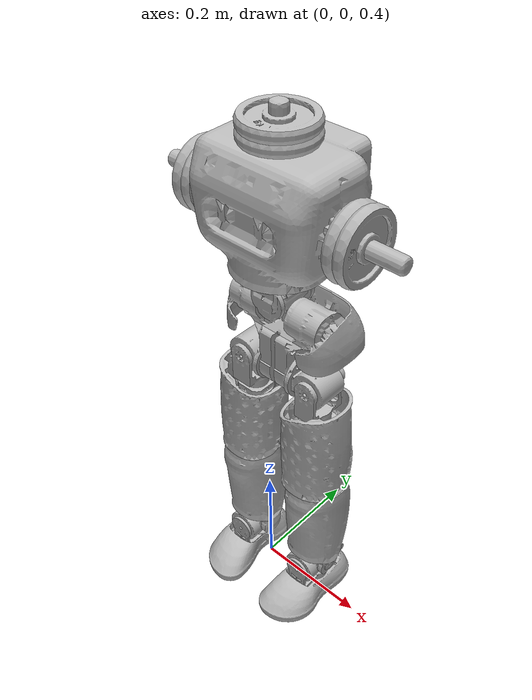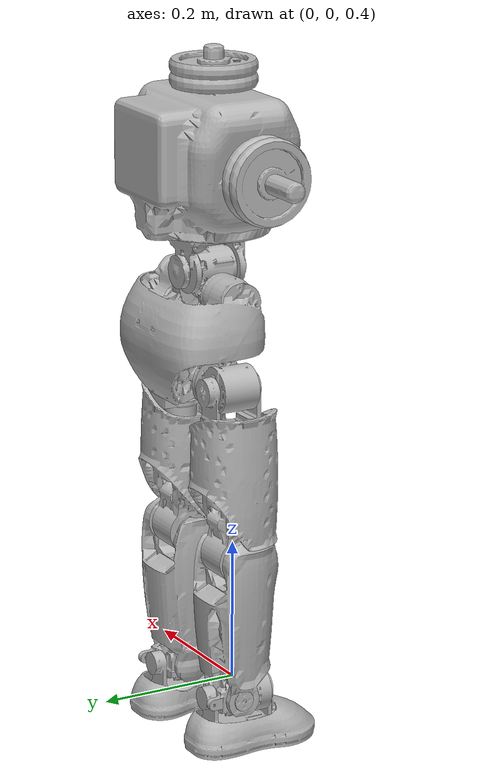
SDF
<?xml version='1.0'?>
<sdf version='1.5'>
  <model name="iCubHeidelberg01_fixed">
    <include>
      <uri>model://iCubHeidelberg01_model</uri>
      <pose>0.0 0 1.0 1.57079632679 0 0</pose>
    </include>

    <joint name="fixed to ground" type="revolute">
      <parent>world</parent>
      <child>iCubHeidelberg01_SIM_MODEL::root_link</child>
       <axis>
        <limit>
          <lower>0</lower>
          <upper>0</upper>
        </limit>
        <xyz>0 0 1</xyz>
        </axis>
    </joint>

  </model>
</sdf>

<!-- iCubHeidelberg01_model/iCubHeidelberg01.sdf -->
<sdf version='1.5'>
  <model name='iCubHeidelberg01_SIM_MODEL'>
    <link name='root_link'>
      <pose>0 0 0 0 -0 0</pose>
      <inertial>
        <pose>-0.000175548 -0.0820671 -0.0679103 0 -0 0</pose>
        <mass>4.55132</mass>
        <inertia>
          <ixx>0.0133835</ixx>
          <ixy>3.22057e-05</ixy>
          <ixz>-6.77957e-05</ixz>
          <iyy>0.0178931</iyy>
          <iyz>-0.00175809</iyz>
          <izz>0.020903</izz>
        </inertia>
      </inertial>
      <collision name='root_link_collision'>
        <pose>0 0 0 0 -0 0</pose>
        <geometry>
          <mesh>
            <scale>0.001 0.001 0.001</scale>
            <uri>model://iCubHeidelberg01_model/dae_meshes/sim_sea_root_link_prt.dae</uri>
          </mesh>
        </geometry>
      </collision>
      <visual name='root_link_visual'>
        <pose>0 0 0 0 -0 0</pose>
        <geometry>
          <mesh>
            <scale>0.001 0.001 0.001</scale>
            <uri>model://iCubHeidelberg01_model/dae_meshes/sim_sea_root_link_prt.dae</uri>
          </mesh>
        </geometry>
      </visual>
      <velocity_decay>
        <linear>0</linear>
        <angular>0</angular>
      </velocity_decay>
    </link>
    <link name='l_hip_1'>
      <pose>-0.026 -0.151913 -0.0428515 -3.14159 -0 -3.14159</pose>
      <inertial>
        <pose>-0.086666 -2.6e-05 0.0002121 0 -0 0</pose>
        <mass>0.610394</mass>
        <inertia>
          <ixx>0.000304601</ixx>
          <ixy>7.97583e-07</ixy>
          <ixz>-2.29911e-07</ixz>
          <iyy>0.000454222</iyy>
          <iyz>1.14938e-06</iyz>
          <izz>0.000453573</izz>
        </inertia>
      </inertial>
      <collision name='l_hip_1_collision'>
        <pose>-0.026 0.151913 -0.0428515 0 -0 0</pose>
        <geometry>
          <mesh>
            <scale>0.001 0.001 0.001</scale>
            <uri>model://iCubHeidelberg01_model/dae_meshes/sim_sea_l_hip_1_prt.dae</uri>
          </mesh>
        </geometry>
      </collision>
      <visual name='l_hip_1_visual'>
        <pose>-0.026 0.151913 -0.0428515 0 -0 0</pose>
        <geometry>
          <mesh>
            <scale>0.001 0.001 0.001</scale>
            <uri>model://iCubHeidelberg01_model/dae_meshes/sim_sea_l_hip_1_prt.dae</uri>
          </mesh>
        </geometry>
      </visual>
      <velocity_decay>
        <linear>0</linear>
        <angular>0</angular>
      </velocity_decay>
    </link>
    <joint name='l_hip_pitch' type='revolute'>
      <child>l_hip_1</child>
      <parent>root_link</parent>
      <axis>
        <xyz>-1 -2.06823e-13 0</xyz>
        <limit>
          <lower>-0.523599</lower>
          <upper>1.48353</upper>
          <effort>50000</effort>
          <velocity>50000</velocity>
        </limit>
        <dynamics>
          <damping>0.223</damping>
          <spring_reference>0</spring_reference>
          <spring_stiffness>0</spring_stiffness>
        </dynamics>
        <use_parent_model_frame>1</use_parent_model_frame>
      </axis>
    </joint>
    <link name='l_hip_2'>
      <pose>0.0701 -0.151913 -0.0690986 -3.14159 -0 -3.14159</pose>
      <inertial>
        <pose>5.25652e-05 -0.0502065 -0.0237881 0 -0 0</pose>
        <mass>0.415498</mass>
        <inertia>
          <ixx>0.000623759</ixx>
          <ixy>9.50818e-07</ixy>
          <ixz>2.06495e-08</ixz>
          <iyy>0.000287812</iyy>
          <iyz>1.76173e-05</iyz>
          <izz>0.000465225</izz>
        </inertia>
      </inertial>
      <collision name='l_hip_2_collision'>
        <pose>0.0701 0.151913 -0.0690986 0 -0 0</pose>
        <geometry>
          <mesh>
            <scale>0.001 0.001 0.001</scale>
            <uri>model://iCubHeidelberg01_model/dae_meshes/sim_sea_l_hip_2_prt.dae</uri>
          </mesh>
        </geometry>
      </collision>
      <collision name='l_hip_2_collision_l_upper_thigh'>
        <pose>0.0701 0.151913 -0.0690986 0 -0 0</pose>
        <geometry>
          <mesh>
            <scale>0.001 0.001 0.001</scale>
            <uri>model://iCubHeidelberg01_model/dae_meshes/sim_sea_l_upper_thigh_prt.dae</uri>
          </mesh>
        </geometry>
      </collision>
      <visual name='l_hip_2_visual'>
        <pose>0.0701 0.151913 -0.0690986 0 -0 0</pose>
        <geometry>
          <mesh>
            <scale>0.001 0.001 0.001</scale>
            <uri>model://iCubHeidelberg01_model/dae_meshes/sim_sea_l_hip_2_prt.dae</uri>
          </mesh>
        </geometry>
      </visual>
      <visual name='l_hip_2_visual_l_upper_thigh'>
        <pose>0.0701 0.151913 -0.0690986 0 -0 0</pose>
        <geometry>
          <mesh>
            <scale>0.001 0.001 0.001</scale>
            <uri>model://iCubHeidelberg01_model/dae_meshes/sim_sea_l_upper_thigh_prt.dae</uri>
          </mesh>
        </geometry>
      </visual>
      <velocity_decay>
        <linear>0</linear>
        <angular>0</angular>
      </velocity_decay>
    </link>
    <joint name='l_hip_roll' type='revolute'>
      <child>l_hip_2</child>
      <parent>l_hip_1</parent>
      <axis>
        <xyz>-3.04208e-25 1.47086e-12 1</xyz>
        <limit>
          <lower>0</lower>
          <upper>1.5708</upper>
          <effort>50000</effort>
          <velocity>50000</velocity>
        </limit>
        <dynamics>
          <damping>0.223</damping>
          <spring_reference>0</spring_reference>
          <spring_stiffness>0</spring_stiffness>
        </dynamics>
        <use_parent_model_frame>1</use_parent_model_frame>
      </axis>
    </joint>
    <link name='l_thigh'>
      <pose>0.0701 -0.244213 -0.043709 -3.14159 -0 -3.14159</pose>
      <inertial>
        <pose>-0.0001448 -0.065088 -0.0091078 0 -0 0</pose>
        <mass>2.82909</mass>
        <inertia>
          <ixx>0.00961828</ixx>
          <ixy>0.000277522</ixy>
          <ixz>7.45373e-06</ixz>
          <iyy>0.00385108</iyy>
          <iyz>-0.000180645</iyz>
          <izz>0.00968964</izz>
        </inertia>
      </inertial>
      <collision name='l_thigh_collision'>
        <pose>0.0701 0.241013 -0.043709 0 -0 0</pose>
        <geometry>
          <mesh>
            <scale>0.001 0.001 0.001</scale>
            <uri>model://iCubHeidelberg01_model/dae_meshes/sim_sea_l_thigh_prt.dae</uri>
          </mesh>
        </geometry>
      </collision>
      <visual name='l_thigh_visual'>
        <pose>0.0701 0.241013 -0.043709 0 -0 0</pose>
        <geometry>
          <mesh>
            <scale>0.001 0.001 0.001</scale>
            <uri>model://iCubHeidelberg01_model/dae_meshes/sim_sea_l_thigh_prt.dae</uri>
          </mesh>
        </geometry>
      </visual>
      <velocity_decay>
        <linear>0</linear>
        <angular>0</angular>
      </velocity_decay>
    </link>
    <joint name='l_hip_yaw' type='revolute'>
      <child>l_thigh</child>
      <parent>l_hip_2</parent>
      <axis>
        <xyz>-2.06823e-13 1 -1.43133e-12</xyz>
        <limit>
          <lower>-1.22173</lower>
          <upper>1.22173</upper>
          <effort>50000</effort>
          <velocity>50000</velocity>
        </limit>
        <dynamics>
          <damping>0.223</damping>
          <spring_reference>0</spring_reference>
          <spring_stiffness>0</spring_stiffness>
        </dynamics>
        <use_parent_model_frame>1</use_parent_model_frame>
      </axis>
    </joint>
    <link name='l_shank'>
      <pose>0.0879895 -0.389838 -0.043709 -3.14159 -0 -3.14159</pose>
      <inertial>
        <pose>0.0120744 -0.083027 -0.0073589 0 -0 0</pose>
        <mass>3.31111</mass>
        <inertia>
          <ixx>0.0108069</ixx>
          <ixy>0.000604622</ixy>
          <ixz>5.98023e-06</ixz>
          <iyy>0.00495004</iyy>
          <iyz>-0.000693558</iyz>
          <izz>0.0116311</izz>
        </inertia>
      </inertial>
      <collision name='l_shank_collision'>
        <pose>0.0841895 0.386638 -0.043709 0 -0 0</pose>
        <geometry>
          <mesh>
            <scale>0.001 0.001 0.001</scale>
            <uri>model://iCubHeidelberg01_model/dae_meshes/sim_sea_l_shank_prt.dae</uri>
          </mesh>
        </geometry>
      </collision>
      <visual name='l_shank_visual'>
        <pose>0.0841895 0.386638 -0.043709 0 -0 0</pose>
        <geometry>
          <mesh>
            <scale>0.001 0.001 0.001</scale>
            <uri>model://iCubHeidelberg01_model/dae_meshes/sim_sea_l_shank_prt.dae</uri>
          </mesh>
        </geometry>
      </visual>
      <velocity_decay>
        <linear>0</linear>
        <angular>0</angular>
      </velocity_decay>
    </link>
    <joint name='l_knee' type='revolute'>
      <child>l_shank</child>
      <parent>l_thigh</parent>
      <axis>
        <xyz>-1 -2.06823e-13 0</xyz>
        <limit>
          <lower>-1.74533</lower>
          <upper>0</upper>
          <effort>50000</effort>
          <velocity>50000</velocity>
        </limit>
        <dynamics>
          <damping>0.223</damping>
          <spring_reference>0</spring_reference>
          <spring_stiffness>0</spring_stiffness>
        </dynamics>
        <use_parent_model_frame>1</use_parent_model_frame>
      </axis>
    </joint>
    <link name='l_ankle'>
      <pose>0.10092 -0.590338 -0.043709 -3.14159 -0 -3.14159</pose>
      <inertial>
        <pose>0.0265327 7.4e-05 -0.0150166 0 -0 0</pose>
        <mass>0.554181</mass>
        <inertia>
          <ixx>0.000368295</ixx>
          <ixy>2.92938e-07</ixy>
          <ixz>-1.37313e-05</ixz>
          <iyy>0.000414394</iyy>
          <iyz>1.75709e-06</iyz>
          <izz>0.00028171</izz>
        </inertia>
      </inertial>
      <collision name='l_ankle_collision'>
        <pose>0.09712 0.587138 -0.043709 0 -0 0</pose>
        <geometry>
          <mesh>
            <scale>0.001 0.001 0.001</scale>
            <uri>model://iCubHeidelberg01_model/dae_meshes/sim_sea_l_ankle_prt.dae</uri>
          </mesh>
        </geometry>
      </collision>
      <visual name='l_ankle_visual'>
        <pose>0.09712 0.587138 -0.043709 0 -0 0</pose>
        <geometry>
          <mesh>
            <scale>0.001 0.001 0.001</scale>
            <uri>model://iCubHeidelberg01_model/dae_meshes/sim_sea_l_ankle_prt.dae</uri>
          </mesh>
        </geometry>
      </visual>
      <velocity_decay>
        <linear>0</linear>
        <angular>0</angular>
      </velocity_decay>
    </link>
    <joint name='l_ankle_pitch' type='revolute'>
      <child>l_ankle</child>
      <parent>l_shank</parent>
      <axis>
        <xyz>1 2.06823e-13 0</xyz>
        <limit>
          <lower>-0.349066</lower>
          <upper>0.523599</upper>
          <effort>50000</effort>
          <velocity>50000</velocity>
        </limit>
        <dynamics>
          <damping>0.223</damping>
          <spring_reference>0</spring_reference>
          <spring_stiffness>0</spring_stiffness>
        </dynamics>
        <use_parent_model_frame>1</use_parent_model_frame>
      </axis>
    </joint>
    <link name='l_upper_foot'>
      <pose>0.0739 -0.590338 0.000853467 -3.14159 -0 -3.14159</pose>
      <inertial>
        <pose>-0.00409418 -0.0562604 0.0177828 0 -0 0</pose>
        <mass>1.13271</mass>
        <inertia>
          <ixx>0.00363251</ixx>
          <ixy>-2.49209e-05</ixy>
          <ixz>-0.000169419</ixz>
          <iyy>0.00388982</iyy>
          <iyz>-0.000172016</iyz>
          <izz>0.000959682</izz>
        </inertia>
      </inertial>
      <collision name='l_upper_foot_collision'>
        <pose>0.0701 0.587138 0.000853467 0 -0 0</pose>
        <geometry>
          <mesh>
            <scale>0.001 0.001 0.001</scale>
            <uri>model://iCubHeidelberg01_model/dae_meshes/sim_sea_l_foot_prt.dae</uri>
          </mesh>
        </geometry>
      </collision>
      <collision name='l_upper_foot_collision_l_foot'>
        <pose>0.0701 0.587138 0.000853467 0 -0 0</pose>
        <geometry>
          <mesh>
            <scale>0.001 0.001 0.001</scale>
            <uri>model://iCubHeidelberg01_model/dae_meshes/sim_sea_l_sole_prt.dae</uri>
          </mesh>
        </geometry>
        <surface>
            <contact>
                <ode>
                    <soft_erp>  0.5    </soft_erp>
                    <kp>        1e+05  </kp>
                    <kd>        10000  </kd>
                    <max_vel>   1      </max_vel>
                    <min_depth> 0      </min_depth>
                </ode>
            </contact>
            <friction>
                <ode>
                    <mu>  1  </mu>
                    <mu2> 1  </mu2>
                    <slip1> 0.000001 </slip1>
                    <slip2> 0.000001 </slip2>
                </ode>
            </friction>
        </surface>
      </collision>
      <visual name='l_upper_foot_visual'>
        <pose>0.0701 0.587138 0.000853467 0 -0 0</pose>
        <geometry>
          <mesh>
            <scale>0.001 0.001 0.001</scale>
            <uri>model://iCubHeidelberg01_model/dae_meshes/sim_sea_l_foot_prt.dae</uri>
          </mesh>
        </geometry>
      </visual>
      <visual name='l_upper_foot_visual_l_foot'>
        <pose>0.0701 0.587138 0.000853467 0 -0 0</pose>
        <geometry>
          <mesh>
            <scale>0.001 0.001 0.001</scale>
            <uri>model://iCubHeidelberg01_model/dae_meshes/sim_sea_l_sole_prt.dae</uri>
          </mesh>
        </geometry>
      </visual>
      <velocity_decay>
        <linear>0</linear>
        <angular>0</angular>
      </velocity_decay>
    </link>
    <joint name='l_ankle_roll' type='revolute'>
      <child>l_upper_foot</child>
      <parent>l_ankle</parent>
      <axis>
        <xyz>-2.98792e-25 1.44467e-12 1</xyz>
        <limit>
          <lower>-0.349066</lower>
          <upper>0.349066</upper>
          <effort>50000</effort>
          <velocity>50000</velocity>
        </limit>
        <dynamics>
          <damping>0.223</damping>
          <spring_reference>0</spring_reference>
          <spring_stiffness>0</spring_stiffness>
        </dynamics>
        <use_parent_model_frame>1</use_parent_model_frame>
      </axis>
    </joint>
    <link name='r_hip_1'>
      <pose>-0.0262461 -0.151913 -0.0428515 0 -0 0</pose>
      <inertial>
        <pose>-0.0344199 -2.6e-05 -0.0002121 0 -0 0</pose>
        <mass>0.610394</mass>
        <inertia>
          <ixx>0.000304601</ixx>
          <ixy>7.97583e-07</ixy>
          <ixz>-2.29911e-07</ixz>
          <iyy>0.000454222</iyy>
          <iyz>1.14938e-06</iyz>
          <izz>0.000453573</izz>
        </inertia>
      </inertial>
      <collision name='r_hip_1_collision'>
        <pose>0.0262461 0.151913 0.0428515 0 -0 0</pose>
        <geometry>
          <mesh>
            <scale>0.001 0.001 0.001</scale>
            <uri>model://iCubHeidelberg01_model/dae_meshes/sim_sea_r_hip_1_prt.dae</uri>
          </mesh>
        </geometry>
      </collision>
      <visual name='r_hip_1_visual'>
        <pose>0.0262461 0.151913 0.0428515 0 -0 0</pose>
        <geometry>
          <mesh>
            <scale>0.001 0.001 0.001</scale>
            <uri>model://iCubHeidelberg01_model/dae_meshes/sim_sea_r_hip_1_prt.dae</uri>
          </mesh>
        </geometry>
      </visual>
      <velocity_decay>
        <linear>0</linear>
        <angular>0</angular>
      </velocity_decay>
    </link>
    <joint name='r_hip_pitch' type='revolute'>
      <child>r_hip_1</child>
      <parent>root_link</parent>
      <axis>
        <xyz>-1 0 0</xyz>
        <limit>
          <lower>-0.523599</lower>
          <upper>1.48353</upper>
          <effort>50000</effort>
          <velocity>50000</velocity>
        </limit>
        <dynamics>
          <damping>0.223</damping>
          <spring_reference>0</spring_reference>
          <spring_stiffness>0</spring_stiffness>
        </dynamics>
        <use_parent_model_frame>1</use_parent_model_frame>
      </axis>
    </joint>
    <link name='r_hip_2'>
      <pose>-0.0701 -0.151913 -0.0690986 0 -0 0</pose>
      <inertial>
        <pose>5.25652e-05 -0.0502065 0.0237881 0 -0 0</pose>
        <mass>0.415498</mass>
        <inertia>
          <ixx>0.000623759</ixx>
          <ixy>9.50818e-07</ixy>
          <ixz>-4.66603e-08</ixz>
          <iyy>0.000287812</iyy>
          <iyz>3.44947e-05</iyz>
          <izz>0.000465225</izz>
        </inertia>
      </inertial>
      <collision name='r_hip_2_collision'>
        <pose>0.0701 0.151913 0.0690986 0 -0 0</pose>
        <geometry>
          <mesh>
            <scale>0.001 0.001 0.001</scale>
            <uri>model://iCubHeidelberg01_model/dae_meshes/sim_sea_r_hip_2_prt.dae</uri>
          </mesh>
        </geometry>
      </collision>
      <collision name='r_hip_2_collision_r_upper_thigh'>
        <pose>0.0701 0.151913 0.0690986 0 -0 0</pose>
        <geometry>
          <mesh>
            <scale>0.001 0.001 0.001</scale>
            <uri>model://iCubHeidelberg01_model/dae_meshes/sim_sea_r_upper_thigh_prt.dae</uri>
          </mesh>
        </geometry>
      </collision>
      <visual name='r_hip_2_visual'>
        <pose>0.0701 0.151913 0.0690986 0 -0 0</pose>
        <geometry>
          <mesh>
            <scale>0.001 0.001 0.001</scale>
            <uri>model://iCubHeidelberg01_model/dae_meshes/sim_sea_r_hip_2_prt.dae</uri>
          </mesh>
        </geometry>
      </visual>
      <visual name='r_hip_2_visual_r_upper_thigh'>
        <pose>0.0701 0.151913 0.0690986 0 -0 0</pose>
        <geometry>
          <mesh>
            <scale>0.001 0.001 0.001</scale>
            <uri>model://iCubHeidelberg01_model/dae_meshes/sim_sea_r_upper_thigh_prt.dae</uri>
          </mesh>
        </geometry>
      </visual>
      <velocity_decay>
        <linear>0</linear>
        <angular>0</angular>
      </velocity_decay>
    </link>
    <joint name='r_hip_roll' type='revolute'>
      <child>r_hip_2</child>
      <parent>r_hip_1</parent>
      <axis>
        <xyz>0 0 -1</xyz>
        <limit>
          <lower>0</lower>
          <upper>1.5708</upper>
          <effort>50000</effort>
          <velocity>50000</velocity>
        </limit>
        <dynamics>
          <damping>0.223</damping>
          <spring_reference>0</spring_reference>
          <spring_stiffness>0</spring_stiffness>
        </dynamics>
        <use_parent_model_frame>1</use_parent_model_frame>
      </axis>
    </joint>
    <link name='r_thigh'>
      <pose>-0.0701 -0.244213 -0.043709 0 -0 0</pose>
      <inertial>
        <pose>-0.0001448 -0.065088 0.0091078 0 -0 0</pose>
        <mass>2.82909</mass>
        <inertia>
          <ixx>0.00961828</ixx>
          <ixy>0.000277522</ixy>
          <ixz>7.45373e-06</ixz>
          <iyy>0.00385108</iyy>
          <iyz>-0.000180645</iyz>
          <izz>0.00968964</izz>
        </inertia>
      </inertial>
      <collision name='r_thigh_collision'>
        <pose>0.0701 0.241013 0.043709 0 -0 0</pose>
        <geometry>
          <mesh>
            <scale>0.001 0.001 0.001</scale>
            <uri>model://iCubHeidelberg01_model/dae_meshes/sim_sea_r_thigh_prt.dae</uri>
          </mesh>
        </geometry>
      </collision>
      <visual name='r_thigh_visual'>
        <pose>0.0701 0.241013 0.043709 0 -0 0</pose>
        <geometry>
          <mesh>
            <scale>0.001 0.001 0.001</scale>
            <uri>model://iCubHeidelberg01_model/dae_meshes/sim_sea_r_thigh_prt.dae</uri>
          </mesh>
        </geometry>
      </visual>
      <velocity_decay>
        <linear>0</linear>
        <angular>0</angular>
      </velocity_decay>
    </link>
    <joint name='r_hip_yaw' type='revolute'>
      <child>r_thigh</child>
      <parent>r_hip_2</parent>
      <axis>
        <xyz>0 -1 0</xyz>
        <limit>
          <lower>-1.22173</lower>
          <upper>1.22173</upper>
          <effort>50000</effort>
          <velocity>50000</velocity>
        </limit>
        <dynamics>
          <damping>0.223</damping>
          <spring_reference>0</spring_reference>
          <spring_stiffness>0</spring_stiffness>
        </dynamics>
        <use_parent_model_frame>1</use_parent_model_frame>
      </axis>
    </joint>
    <link name='r_shank'>
      <pose>-0.0879895 -0.389838 -0.043709 0 -0 0</pose>
      <inertial>
        <pose>0.0120744 -0.083027 0.0073589 0 -0 0</pose>
        <mass>3.31111</mass>
        <inertia>
          <ixx>0.0108069</ixx>
          <ixy>0.000604622</ixy>
          <ixz>5.98023e-06</ixz>
          <iyy>0.00495004</iyy>
          <iyz>-0.000693558</iyz>
          <izz>0.0116311</izz>
        </inertia>
      </inertial>
      <collision name='r_shank_collision'>
        <pose>0.0841895 0.386638 0.043709 0 -0 0</pose>
        <geometry>
          <mesh>
            <scale>0.001 0.001 0.001</scale>
            <uri>model://iCubHeidelberg01_model/dae_meshes/sim_sea_r_shank_prt.dae</uri>
          </mesh>
        </geometry>
      </collision>
      <visual name='r_shank_visual'>
        <pose>0.0841895 0.386638 0.043709 0 -0 0</pose>
        <geometry>
          <mesh>
            <scale>0.001 0.001 0.001</scale>
            <uri>model://iCubHeidelberg01_model/dae_meshes/sim_sea_r_shank_prt.dae</uri>
          </mesh>
        </geometry>
      </visual>
      <velocity_decay>
        <linear>0</linear>
        <angular>0</angular>
      </velocity_decay>
    </link>
    <joint name='r_knee' type='revolute'>
      <child>r_shank</child>
      <parent>r_thigh</parent>
      <axis>
        <xyz>-1 0 0</xyz>
        <limit>
          <lower>-1.74533</lower>
          <upper>0</upper>
          <effort>50000</effort>
          <velocity>50000</velocity>
        </limit>
        <dynamics>
          <damping>0.223</damping>
          <spring_reference>0</spring_reference>
          <spring_stiffness>0</spring_stiffness>
        </dynamics>
        <use_parent_model_frame>1</use_parent_model_frame>
      </axis>
    </joint>
    <link name='r_ankle'>
      <pose>-0.10092 -0.590338 -0.043709 0 -0 0</pose>
      <inertial>
        <pose>0.0265327 7.4e-05 0.0150166 0 -0 0</pose>
        <mass>0.554181</mass>
        <inertia>
          <ixx>0.000368295</ixx>
          <ixy>2.92938e-07</ixy>
          <ixz>-1.37313e-05</ixz>
          <iyy>0.000414394</iyy>
          <iyz>1.75709e-06</iyz>
          <izz>0.00028171</izz>
        </inertia>
      </inertial>
      <collision name='r_ankle_collision'>
        <pose>0.09712 0.587138 0.043709 0 -0 0</pose>
        <geometry>
          <mesh>
            <scale>0.001 0.001 0.001</scale>
            <uri>model://iCubHeidelberg01_model/dae_meshes/sim_sea_r_ankle_prt.dae</uri>
          </mesh>
        </geometry>
      </collision>
      <visual name='r_ankle_visual'>
        <pose>0.09712 0.587138 0.043709 0 -0 0</pose>
        <geometry>
          <mesh>
            <scale>0.001 0.001 0.001</scale>
            <uri>model://iCubHeidelberg01_model/dae_meshes/sim_sea_r_ankle_prt.dae</uri>
          </mesh>
        </geometry>
      </visual>
      <velocity_decay>
        <linear>0</linear>
        <angular>0</angular>
      </velocity_decay>
    </link>
    <joint name='r_ankle_pitch' type='revolute'>
      <child>r_ankle</child>
      <parent>r_shank</parent>
      <axis>
        <xyz>1 0 0</xyz>
        <limit>
          <lower>-0.349066</lower>
          <upper>0.523599</upper>
          <effort>50000</effort>
          <velocity>50000</velocity>
        </limit>
        <dynamics>
          <damping>0.223</damping>
          <spring_reference>0</spring_reference>
          <spring_stiffness>0</spring_stiffness>
        </dynamics>
        <use_parent_model_frame>1</use_parent_model_frame>
      </axis>
    </joint>
    <link name='r_upper_foot'>
      <pose>-0.0739 -0.590338 0.000853467 0 -0 0</pose>
      <inertial>
        <pose>-0.00409418 -0.0562604 -0.0177828 0 -0 0</pose>
        <mass>1.13271</mass>
        <inertia>
          <ixx>0.00363251</ixx>
          <ixy>-2.49209e-05</ixy>
          <ixz>-0.000108248</ixz>
          <iyy>0.00388982</iyy>
          <iyz>0.00016324</iyz>
          <izz>0.000959682</izz>
        </inertia>
      </inertial>
      <collision name='r_upper_foot_collision'>
        <pose>0.0701 0.587138 -0.000853467 0 -0 0</pose>
        <geometry>
          <mesh>
            <scale>0.001 0.001 0.001</scale>
            <uri>model://iCubHeidelberg01_model/dae_meshes/sim_sea_r_foot_prt.dae</uri>
          </mesh>
        </geometry>
      </collision>
      <collision name='r_upper_foot_collision_r_foot'>
        <pose>0.0701 0.587138 -0.000853467 0 -0 0</pose>
        <geometry>
          <mesh>
            <scale>0.001 0.001 0.001</scale>
            <uri>model://iCubHeidelberg01_model/dae_meshes/sim_sea_r_sole_prt.dae</uri>
          </mesh>
        </geometry>
	<surface>
            <contact>
                <ode>
                    <soft_erp>  0.5   </soft_erp>
                    <kp>        1e+05 </kp>
                    <kd>        10000 </kd>
                    <max_vel>   1     </max_vel>
                    <min_depth> 0     </min_depth>
                </ode>
            </contact>
            <friction>
                <ode>
                    <mu>  1  </mu>
                    <mu2> 1  </mu2>
                    <slip1> 0.000001 </slip1>
                    <slip2> 0.000001 </slip2>
                </ode>
            </friction>
        </surface>
      </collision>
      <visual name='r_upper_foot_visual'>
        <pose>0.0701 0.587138 -0.000853467 0 -0 0</pose>
        <geometry>
          <mesh>
            <scale>0.001 0.001 0.001</scale>
            <uri>model://iCubHeidelberg01_model/dae_meshes/sim_sea_r_foot_prt.dae</uri>
          </mesh>
        </geometry>
      </visual>
      <visual name='r_upper_foot_visual_r_foot'>
        <pose>0.0701 0.587138 -0.000853467 0 -0 0</pose>
        <geometry>
          <mesh>
            <scale>0.001 0.001 0.001</scale>
            <uri>model://iCubHeidelberg01_model/dae_meshes/sim_sea_r_sole_prt.dae</uri>
          </mesh>
        </geometry>
      </visual>
      <velocity_decay>
        <linear>0</linear>
        <angular>0</angular>
      </velocity_decay>
    </link>
    <joint name='r_ankle_roll' type='revolute'>
      <child>r_upper_foot</child>
      <parent>r_ankle</parent>
      <axis>
        <xyz>0 0 -1</xyz>
        <limit>
          <lower>-0.349066</lower>
          <upper>0.349066</upper>
          <effort>50000</effort>
          <velocity>50000</velocity>
        </limit>
        <dynamics>
          <damping>0.223</damping>
          <spring_reference>0</spring_reference>
          <spring_stiffness>0</spring_stiffness>
        </dynamics>
        <use_parent_model_frame>1</use_parent_model_frame>
      </axis>
    </joint>
    <link name='lap_belt_1'>
      <pose>-0.0394 -0.032 -0.0364 0 -0 0</pose>
      <inertial>
        <pose>0.0392412 0.0281103 -0.0033209 0 -0 0</pose>
        <mass>0.479404</mass>
        <inertia>
          <ixx>0.000332949</ixx>
          <ixy>-2.39782e-06</ixy>
          <ixz>3.60866e-07</ixz>
          <iyy>0.000309732</iyy>
          <iyz>1.13592e-05</iyz>
          <izz>0.000223739</izz>
        </inertia>
      </inertial>
      <collision name='lap_belt_1_collision'>
        <pose>0.0394 0.032 0.0364 0 -0 0</pose>
        <geometry>
          <mesh>
            <scale>0.001 0.001 0.001</scale>
            <uri>model://iCubHeidelberg01_model/dae_meshes/sim_sea_lap_belt_1_prt.dae</uri>
          </mesh>
        </geometry>
      </collision>
      <visual name='lap_belt_1_visual'>
        <pose>0.0394 0.032 0.0364 0 -0 0</pose>
        <geometry>
          <mesh>
            <scale>0.001 0.001 0.001</scale>
            <uri>model://iCubHeidelberg01_model/dae_meshes/sim_sea_lap_belt_1_prt.dae</uri>
          </mesh>
        </geometry>
      </visual>
      <velocity_decay>
        <linear>0</linear>
        <angular>0</angular>
      </velocity_decay>
    </link>
    <joint name='torso_pitch' type='revolute'>
      <child>lap_belt_1</child>
      <parent>root_link</parent>
      <axis>
        <xyz>1 0 0</xyz>
        <limit>
          <lower>-0.349066</lower>
          <upper>1.22173</upper>
          <effort>50000</effort>
          <velocity>50000</velocity>
        </limit>
        <dynamics>
          <damping>0.06</damping>
          <spring_reference>0</spring_reference>
          <spring_stiffness>0</spring_stiffness>
        </dynamics>
        <use_parent_model_frame>1</use_parent_model_frame>
      </axis>
    </joint>
    <link name='lap_belt_2'>
      <pose>-1.907e-10 0 -0.090239 0 -0 0</pose>
      <inertial>
        <pose>-0.00010778 0.0247916 0.0535249 0 -0 0</pose>
        <mass>0.327897</mass>
        <inertia>
          <ixx>0.000531991</ixx>
          <ixy>5.54439e-07</ixy>
          <ixz>-2.83073e-07</ixz>
          <iyy>0.00042219</iyy>
          <iyz>2.9326e-05</iyz>
          <izz>0.000303736</izz>
        </inertia>
      </inertial>
      <collision name='lap_belt_2_collision'>
        <pose>0 0 0.090239 0 -0 0</pose>
        <geometry>
          <mesh>
            <scale>0.001 0.001 0.001</scale>
            <uri>model://iCubHeidelberg01_model/dae_meshes/sim_kor_lap_belt_2_prt.dae</uri>
          </mesh>
        </geometry>
      </collision>
      <visual name='lap_belt_2_visual'>
        <pose>0 0 0.090239 0 -0 0</pose>
        <geometry>
          <mesh>
            <scale>0.001 0.001 0.001</scale>
            <uri>model://iCubHeidelberg01_model/dae_meshes/sim_kor_lap_belt_2_prt.dae</uri>
          </mesh>
        </geometry>
      </visual>
      <velocity_decay>
        <linear>0</linear>
        <angular>0</angular>
      </velocity_decay>
    </link>
    <joint name='torso_roll' type='revolute'>
      <child>lap_belt_2</child>
      <parent>lap_belt_1</parent>
      <axis>
        <xyz>0 -1.61681e-10 -1</xyz>
        <limit>
          <lower>-0.523599</lower>
          <upper>0.523599</upper>
          <effort>50000</effort>
          <velocity>50000</velocity>
        </limit>
        <dynamics>
          <damping>0.06</damping>
          <spring_reference>0</spring_reference>
          <spring_stiffness>0</spring_stiffness>
        </dynamics>
        <use_parent_model_frame>1</use_parent_model_frame>
      </axis>
    </joint>
    <link name='chest'>
      <pose>-1.907e-10 0.052 -0.0309 0 -0 0</pose>
      <inertial>
        <pose>-0.000392757 0.110468 -0.00764736 0 -0 0</pose>
        <mass>15.7261</mass>
        <inertia>
          <ixx>0.0859471</ixx>
          <ixy>-0.000159228</ixy>
          <ixz>-0.000144573</ixz>
          <iyy>0.15267</iyy>
          <iyz>0.000717878</iyz>
          <izz>0.175503</izz>
        </inertia>
      </inertial>
      <collision name='chest_collision'>
        <pose>0 -0.052 0.0309 0 -0 0</pose>
        <geometry>
          <mesh>
            <scale>0.001 0.001 0.001</scale>
            <uri>model://iCubHeidelberg01_model/dae_meshes/sim_kor_chest_prt.dae</uri>
          </mesh>
        </geometry>
      </collision>
      <collision name='chest_collision_WEIGHT-1KG'>
        <pose>0.13225 0.0955 0 1.5708 5.55112e-17 -1.5708</pose>
        <geometry>
          <mesh>
            <scale>0.001 0.001 0.001</scale>
            <uri>model://iCubHeidelberg01_model/dae_meshes/weight-1kg_prt.dae</uri>
          </mesh>
        </geometry>
      </collision>
      <collision name='chest_collision_WEIGHT-1KG-1'>
        <pose>0.15075 0.0955 0 1.5708 5.55112e-17 -1.5708</pose>
        <geometry>
          <mesh>
            <scale>0.001 0.001 0.001</scale>
            <uri>model://iCubHeidelberg01_model/dae_meshes/weight-1kg_prt.dae</uri>
          </mesh>
        </geometry>
      </collision>
      <collision name='chest_collision_WEIGHT-1KG-2'>
        <pose>0 0.20675 0 1.5708 -0 0</pose>
        <geometry>
          <mesh>
            <scale>0.001 0.001 0.001</scale>
            <uri>model://iCubHeidelberg01_model/dae_meshes/weight-1kg_prt.dae</uri>
          </mesh>
        </geometry>
      </collision>
      <collision name='chest_collision_WEIGHT-1KG-3'>
        <pose>0 0.22525 0 1.5708 -0 0</pose>
        <geometry>
          <mesh>
            <scale>0.001 0.001 0.001</scale>
            <uri>model://iCubHeidelberg01_model/dae_meshes/weight-1kg_prt.dae</uri>
          </mesh>
        </geometry>
      </collision>
      <collision name='chest_collision_WEIGHT-1KG-4'>
        <pose>-0.13225 0.0955 0 1.5708 -5.55112e-17 1.5708</pose>
        <geometry>
          <mesh>
            <scale>0.001 0.001 0.001</scale>
            <uri>model://iCubHeidelberg01_model/dae_meshes/weight-1kg_prt.dae</uri>
          </mesh>
        </geometry>
      </collision>
      <collision name='chest_collision_WEIGHT-1KG-5'>
        <pose>-0.15075 0.0955 0 1.5708 -5.55112e-17 1.5708</pose>
        <geometry>
          <mesh>
            <scale>0.001 0.001 0.001</scale>
            <uri>model://iCubHeidelberg01_model/dae_meshes/weight-1kg_prt.dae</uri>
          </mesh>
        </geometry>
      </collision>
      <visual name='chest_visual'>
        <pose>0 -0.052 0.0309 0 -0 0</pose>
        <geometry>
          <mesh>
            <scale>0.001 0.001 0.001</scale>
            <uri>model://iCubHeidelberg01_model/dae_meshes/sim_kor_chest_prt.dae</uri>
          </mesh>
        </geometry>
      </visual>
      <visual name='chest_visual_WEIGHT-1KG'>
        <pose>0.13225 0.0955 0 1.5708 5.55112e-17 -1.5708</pose>
        <geometry>
          <mesh>
            <scale>0.001 0.001 0.001</scale>
            <uri>model://iCubHeidelberg01_model/dae_meshes/weight-1kg_prt.dae</uri>
          </mesh>
        </geometry>
      </visual>
      <visual name='chest_visual_WEIGHT-1KG-1'>
        <pose>0.15075 0.0955 0 1.5708 5.55112e-17 -1.5708</pose>
        <geometry>
          <mesh>
            <scale>0.001 0.001 0.001</scale>
            <uri>model://iCubHeidelberg01_model/dae_meshes/weight-1kg_prt.dae</uri>
          </mesh>
        </geometry>
      </visual>
      <visual name='chest_visual_WEIGHT-1KG-2'>
        <pose>0 0.20675 0 1.5708 -0 0</pose>
        <geometry>
          <mesh>
            <scale>0.001 0.001 0.001</scale>
            <uri>model://iCubHeidelberg01_model/dae_meshes/weight-1kg_prt.dae</uri>
          </mesh>
        </geometry>
      </visual>
      <visual name='chest_visual_WEIGHT-1KG-3'>
        <pose>0 0.22525 0 1.5708 -0 0</pose>
        <geometry>
          <mesh>
            <scale>0.001 0.001 0.001</scale>
            <uri>model://iCubHeidelberg01_model/dae_meshes/weight-1kg_prt.dae</uri>
          </mesh>
        </geometry>
      </visual>
      <visual name='chest_visual_WEIGHT-1KG-4'>
        <pose>-0.13225 0.0955 0 1.5708 -5.55112e-17 1.5708</pose>
        <geometry>
          <mesh>
            <scale>0.001 0.001 0.001</scale>
            <uri>model://iCubHeidelberg01_model/dae_meshes/weight-1kg_prt.dae</uri>
          </mesh>
        </geometry>
      </visual>
      <visual name='chest_visual_WEIGHT-1KG-5'>
        <pose>-0.15075 0.0955 0 1.5708 -5.55112e-17 1.5708</pose>
        <geometry>
          <mesh>
            <scale>0.001 0.001 0.001</scale>
            <uri>model://iCubHeidelberg01_model/dae_meshes/weight-1kg_prt.dae</uri>
          </mesh>
        </geometry>
      </visual>
      <velocity_decay>
        <linear>0</linear>
        <angular>0</angular>
      </velocity_decay>
    </link>
    <joint name='torso_yaw' type='revolute'>
      <child>chest</child>
      <parent>lap_belt_2</parent>
      <axis>
        <xyz>0 -1 1.61681e-10</xyz>
        <limit>
          <lower>-0.872665</lower>
          <upper>0.872665</upper>
          <effort>50000</effort>
          <velocity>50000</velocity>
        </limit>
        <dynamics>
          <damping>0.06</damping>
          <spring_reference>0</spring_reference>
          <spring_stiffness>0</spring_stiffness>
        </dynamics>
        <use_parent_model_frame>1</use_parent_model_frame>
      </axis>
    </joint>

        <plugin name="controlboard_torso" filename="libgazebo_yarp_controlboard.so">
            <yarpConfigurationFile>model://iCubHeidelberg01_model/conf/gazebo_iCubHeidelberg01_torso.ini</yarpConfigurationFile>
        </plugin>
        <plugin name="controlboard_right_leg" filename="libgazebo_yarp_controlboard.so">
            <yarpConfigurationFile>model://iCubHeidelberg01_model/conf/gazebo_iCubHeidelberg01_right_leg.ini</yarpConfigurationFile>
        </plugin>
        <plugin name="controlboard_left_leg" filename="libgazebo_yarp_controlboard.so">
            <yarpConfigurationFile>model://iCubHeidelberg01_model/conf/gazebo_iCubHeidelberg01_left_leg.ini</yarpConfigurationFile>
        </plugin>
        <plugin name="apply_external_wrench" filename="libgazebo_yarp_externalwrench.so" >
            <robotNamefromConfigFile>model://iCubHeidelberg01_model/conf/gazebo_iCubHeidelberg01_robotname.ini</robotNamefromConfigFile>>
        </plugin>

        <!-- Spawing pose -->
        <pose>0 0 0.70 1.57 0 0 </pose>

  </model>
</sdf>
